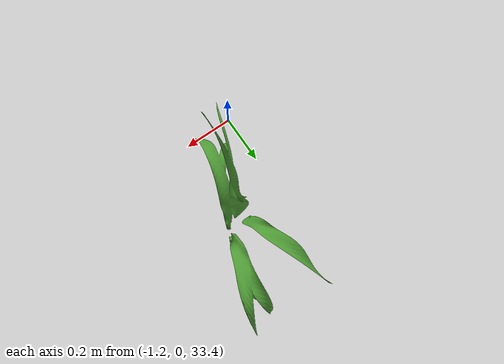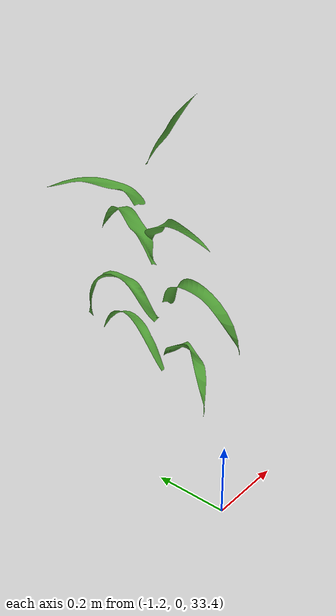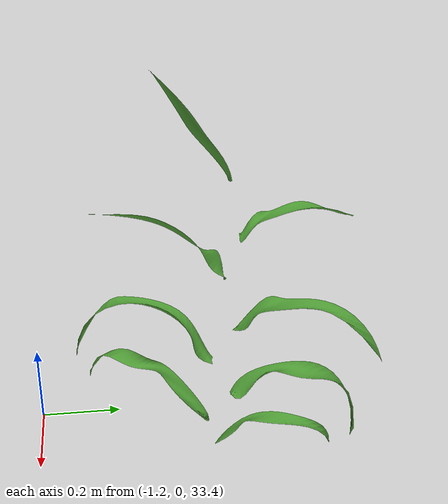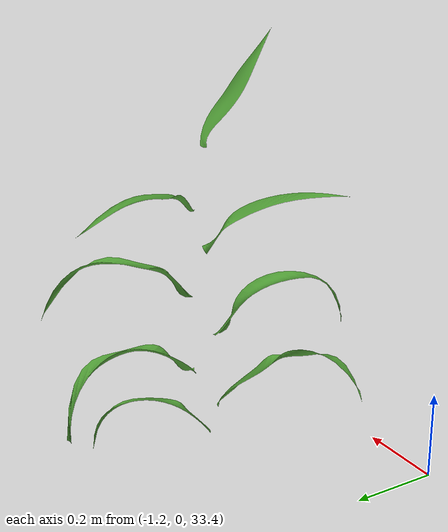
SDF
<?xml version="1.0" ?>
<sdf version="1.6">
  <model name='maize_detailed_0246'>
    <!-- 1. Matched top-level pose from maize_01.sdf -->
    <pose frame=''>0 0 0.05 0 -0 0</pose>

    <!-- Renamed link for clarity -->
    <link name='maize_detailed_0246_link'>

      <!-- 2. Copied inertial properties from maize_01.sdf -->
      <inertial>
        <mass>0.3</mass>
        <inertia>
          <ixx>0.0033416667</ixx>
          <ixy>0</ixy>
          <ixz>0</ixz>
          <iyy>0.0033416667</iyy>
          <iyz>0</iyz>
          <izz>0.000016666667</izz>
        </inertia>
        <!-- Note: original had two pose tags in inertial, which is invalid SDF. Using one. -->
        <pose>0 0 0.1 0 0 0</pose>
      </inertial>

      <!-- 3. THIS IS OUR CRITICAL CHANGE: Using the mesh for collision -->
      <collision name='collision'>
        <!-- THIS POSE SHIFTS THE COLLISION MESH UP BY 10 METERS -->
        <pose>0 0 0.0 0 0 0</pose>
        <geometry>
          <mesh>
            <uri>model://maize_detailed_0246/meshes/0001.stl</uri>
            <scale>0.683166466464586 0.683166466464586 0.683166466464586</scale>
          </mesh>
        </geometry>
      </collision>

      <visual name='visual'>
        <!-- THIS POSE SHIFTS THE VISUAL MESH UP BY 20 METERS -->
        <pose>0 0 0.0 0 0 0</pose>
        <geometry>
          <mesh>
            <uri>model://maize_detailed_0246/meshes/0001.stl</uri>
            <scale>0.683166466464586 0.683166466464586 0.683166466464586</scale>
          </mesh>
        </geometry>
        <material>
            <ambient>0.2 0.4 0.1 1.0</ambient>
            <diffuse>0.3 0.6 0.2 1.0</diffuse>
            <specular>0.1 0.1 0.1 1.0</specular>
            <emissive>0 0 0 1</emissive>
        </material>
      </visual>

    </link>
  </model>
</sdf>
